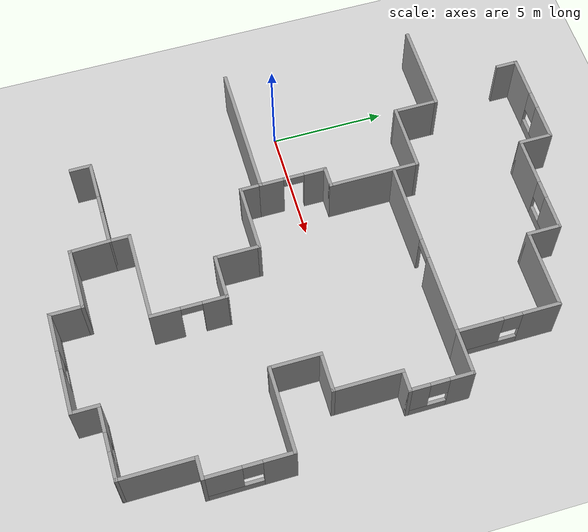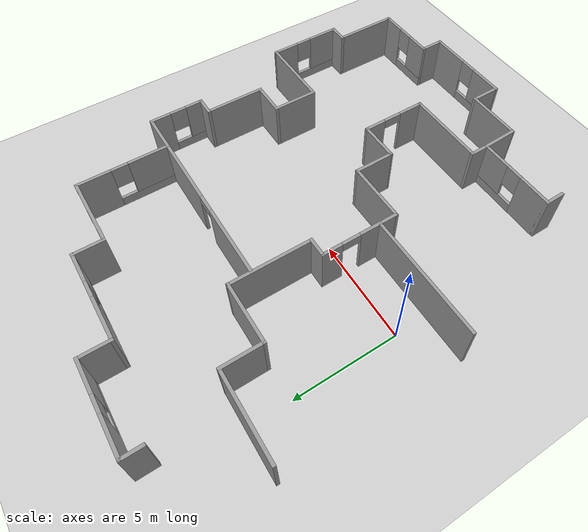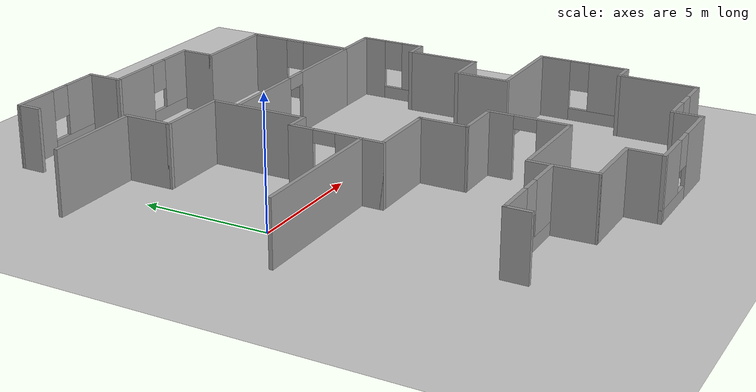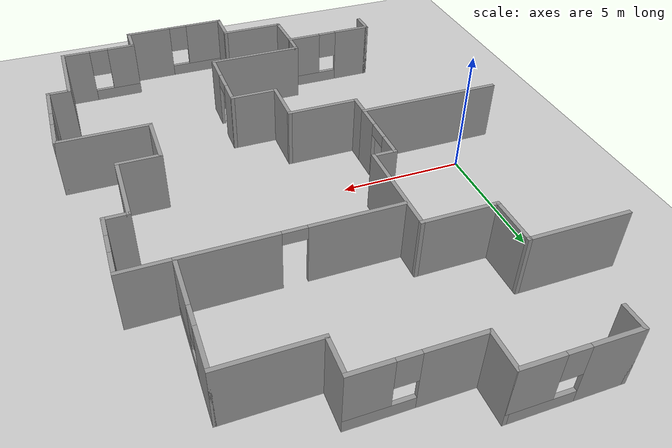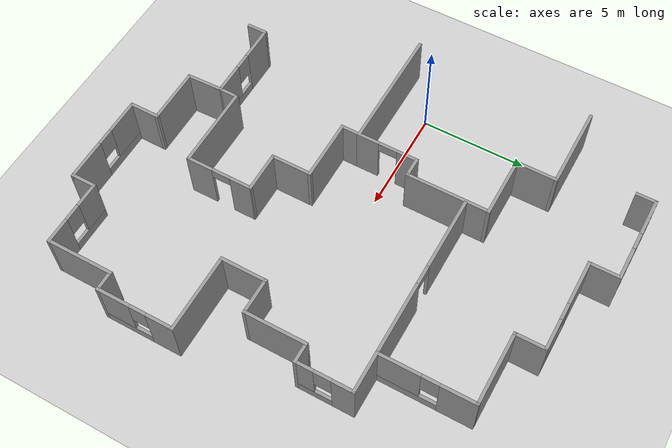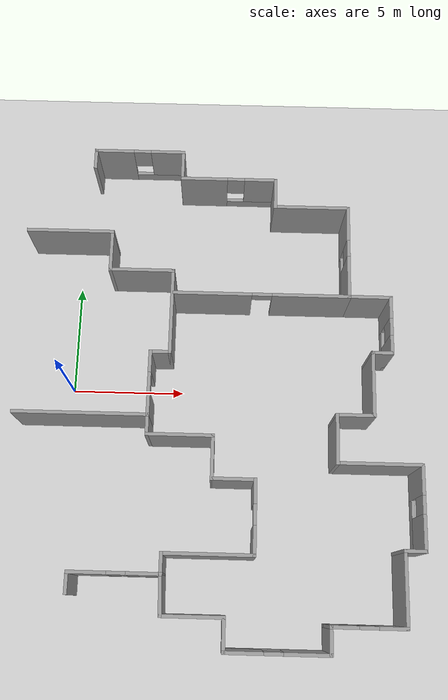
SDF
<sdf version="1.7">
 <world name="default">
  <model name="ground_plane">
   <static>1</static>
   <link name="link">
    <collision name="collision">
     <geometry><plane><normal>0 0 1</normal><size>100 100</size></plane></geometry>
     <surface><friction><ode><mu>100</mu><mu2>50</mu2></ode></friction></surface>
    </collision>
    <visual name="visual">
     <cast_shadows>0</cast_shadows>
     <geometry><plane><normal>0 0 1</normal><size>100 100</size></plane></geometry>
     <material>
      <script><uri>file://media/materials/scripts/gazebo.material</uri><name>Gazebo/Grey</name></script>
     </material>
    </visual>
   </link>
  </model>
  <model name="my_office">
   <pose>-0.02514 -0.08544 0 0 -0 0</pose>
   <link name="Wall_10">
    <collision name="Wall_10_Collision">
     <geometry><box><size>2 0.15 2.5</size></box></geometry>
     <pose>0 0 1.25 0 -0 0</pose>
    </collision>
    <visual name="Wall_10_Visual">
     <pose>0 0 1.25 0 -0 0</pose>
     <geometry><box><size>2 0.15 2.5</size></box></geometry>
     <material>
      <script><uri>file://media/materials/scripts/gazebo.material</uri><name>Gazebo/Grey</name></script>
      <ambient>1 1 1 1</ambient>
     </material>
     <meta><layer>0</layer></meta>
    </visual>
    <pose>6.5 -3.275 0 0 -0 1.5708</pose>
   </link>
   <link name="Wall_11">
    <collision name="Wall_11_Collision">
     <geometry><box><size>3 0.15 2.5</size></box></geometry>
     <pose>0 0 1.25 0 -0 0</pose>
    </collision>
    <visual name="Wall_11_Visual">
     <pose>0 0 1.25 0 -0 0</pose>
     <geometry><box><size>3 0.15 2.5</size></box></geometry>
     <material>
      <script><uri>file://media/materials/scripts/gazebo.material</uri><name>Gazebo/Grey</name></script>
      <ambient>1 1 1 1</ambient>
     </material>
     <meta><layer>0</layer></meta>
    </visual>
    <pose>5.075 -2.35 0 0 -0 3.14159</pose>
   </link>
   <link name="Wall_12">
    <collision name="Wall_12_Collision">
     <geometry><box><size>1 0.15 2.5</size></box></geometry>
     <pose>0 0 1.25 0 -0 0</pose>
    </collision>
    <visual name="Wall_12_Visual">
     <pose>0 0 1.25 0 -0 0</pose>
     <geometry><box><size>1 0.15 2.5</size></box></geometry>
     <material>
      <script><uri>file://media/materials/scripts/gazebo.material</uri><name>Gazebo/Grey</name></script>
      <ambient>1 1 1 1</ambient>
     </material>
     <meta><layer>0</layer></meta>
    </visual>
    <pose>3.65 -1.925 0 0 -0 1.5708</pose>
   </link>
   <link name="Wall_13">
    <collision name="Wall_13_Collision">
     <geometry><box><size>6 0.15 2.5</size></box></geometry>
     <pose>0 0 1.25 0 -0 0</pose>
    </collision>
    <visual name="Wall_13_Visual">
     <pose>0 0 1.25 0 -0 0</pose>
     <geometry><box><size>6 0.15 2.5</size></box></geometry>
     <material>
      <script><uri>file://media/materials/scripts/gazebo.material</uri><name>Gazebo/Grey</name></script>
      <ambient>1 1 1 1</ambient>
     </material>
     <meta><layer>0</layer></meta>
    </visual>
    <pose>0.725 -1.5 0 0 -0 3.14159</pose>
   </link>
   <link name="Wall_24">
    <collision name="Wall_24_Collision">
     <geometry><box><size>1 0.15 2.5</size></box></geometry>
     <pose>0 0 1.25 0 -0 0</pose>
    </collision>
    <visual name="Wall_24_Visual">
     <pose>0 0 1.25 0 -0 0</pose>
     <geometry><box><size>1 0.15 2.5</size></box></geometry>
     <material>
      <script><uri>file://media/materials/scripts/gazebo.material</uri><name>Gazebo/Grey</name></script>
      <ambient>1 1 1 1</ambient>
     </material>
     <meta><layer>0</layer></meta>
    </visual>
    <pose>0.65 -8.625 0 0 -0 1.5708</pose>
   </link>
   <link name="Wall_25">
    <pose>2.575 -8.2 0 0 -0 0</pose>
    <visual name="Wall_25_Visual_0">
     <pose>-1.15778 0 1.25 0 -0 0</pose>
     <geometry><box><size>1.68443 0.15 2.5</size></box></geometry>
     <material>
      <script><uri>file://media/materials/scripts/gazebo.material</uri><name>Gazebo/Grey</name></script>
      <ambient>1 1 1 1</ambient>
     </material>
     <meta><layer>0</layer></meta>
    </visual>
    <collision name="Wall_25_Collision_0">
     <geometry><box><size>1.68443 0.15 2.5</size></box></geometry>
     <pose>-1.15778 0 1.25 0 -0 0</pose>
    </collision>
    <visual name="Wall_25_Visual_1">
     <pose>0.842216 0 0.25 0 -0 0</pose>
     <geometry><box><size>2.31557 0.15 0.5</size></box></geometry>
     <material>
      <script><uri>file://media/materials/scripts/gazebo.material</uri><name>Gazebo/Grey</name></script>
      <ambient>1 1 1 1</ambient>
     </material>
     <meta><layer>0</layer></meta>
    </visual>
    <collision name="Wall_25_Collision_1">
     <geometry><box><size>2.31557 0.15 0.5</size></box></geometry>
     <pose>0.842216 0 0.25 0 -0 0</pose>
    </collision>
    <visual name="Wall_25_Visual_2">
     <pose>1.24222 0 1.5 0 -0 0</pose>
     <geometry><box><size>1.51557 0.15 2</size></box></geometry>
     <material>
      <script><uri>file://media/materials/scripts/gazebo.material</uri><name>Gazebo/Grey</name></script>
      <ambient>1 1 1 1</ambient>
     </material>
     <meta><layer>0</layer></meta>
    </visual>
    <collision name="Wall_25_Collision_2">
     <geometry><box><size>1.51557 0.15 2</size></box></geometry>
     <pose>1.24222 0 1.5 0 -0 0</pose>
    </collision>
    <visual name="Wall_25_Visual_3">
     <pose>0.084432 0 1.9 0 -0 0</pose>
     <geometry><box><size>0.8 0.15 1.2</size></box></geometry>
     <material>
      <script><uri>file://media/materials/scripts/gazebo.material</uri><name>Gazebo/Grey</name></script>
      <ambient>1 1 1 1</ambient>
     </material>
     <meta><layer>0</layer></meta>
    </visual>
    <collision name="Wall_25_Collision_3">
     <geometry><box><size>0.8 0.15 1.2</size></box></geometry>
     <pose>0.084432 0 1.9 0 -0 0</pose>
    </collision>
   </link>
   <link name="Wall_26">
    <collision name="Wall_26_Collision">
     <geometry><box><size>1 0.15 2.5</size></box></geometry>
     <pose>0 0 1.25 0 -0 0</pose>
    </collision>
    <visual name="Wall_26_Visual">
     <pose>0 0 1.25 0 -0 0</pose>
     <geometry><box><size>1 0.15 2.5</size></box></geometry>
     <material>
      <script><uri>file://media/materials/scripts/gazebo.material</uri><name>Gazebo/Grey</name></script>
      <ambient>1 1 1 1</ambient>
     </material>
     <meta><layer>0</layer></meta>
    </visual>
    <pose>4.5 -7.775 0 0 -0 1.5708</pose>
   </link>
   <link name="Wall_27">
    <collision name="Wall_27_Collision">
     <geometry><box><size>4 0.15 2.5</size></box></geometry>
     <pose>0 0 1.25 0 -0 0</pose>
    </collision>
    <visual name="Wall_27_Visual">
     <pose>0 0 1.25 0 -0 0</pose>
     <geometry><box><size>4 0.15 2.5</size></box></geometry>
     <material>
      <script><uri>file://media/materials/scripts/gazebo.material</uri><name>Gazebo/Grey</name></script>
      <ambient>1 1 1 1</ambient>
     </material>
     <meta><layer>0</layer></meta>
    </visual>
    <pose>6.425 -7.35 0 0 -0 0</pose>
   </link>
   <link name="Wall_38">
    <pose>3.65 -0.075 0 0 -0 1.5708</pose>
    <visual name="Wall_38_Visual_0">
     <pose>-0.960473 0 1.25 0 -0 0</pose>
     <geometry><box><size>1.07906 0.15 2.5</size></box></geometry>
     <material>
      <script><uri>file://media/materials/scripts/gazebo.material</uri><name>Gazebo/Grey</name></script>
      <ambient>1 1 1 1</ambient>
     </material>
     <meta><layer>0</layer></meta>
    </visual>
    <collision name="Wall_38_Collision_0">
     <geometry><box><size>1.07906 0.15 2.5</size></box></geometry>
     <pose>-0.960473 0 1.25 0 -0 0</pose>
    </collision>
    <visual name="Wall_38_Visual_1">
     <pose>0.989527 0 1.25 0 -0 0</pose>
     <geometry><box><size>1.02094 0.15 2.5</size></box></geometry>
     <material>
      <script><uri>file://media/materials/scripts/gazebo.material</uri><name>Gazebo/Grey</name></script>
      <ambient>1 1 1 1</ambient>
     </material>
     <meta><layer>0</layer></meta>
    </visual>
    <collision name="Wall_38_Collision_1">
     <geometry><box><size>1.02094 0.15 2.5</size></box></geometry>
     <pose>0.989527 0 1.25 0 -0 0</pose>
    </collision>
    <visual name="Wall_38_Visual_2">
     <pose>0.029055 0 2.25 0 -0 0</pose>
     <geometry><box><size>0.9 0.15 0.5</size></box></geometry>
     <material>
      <script><uri>file://media/materials/scripts/gazebo.material</uri><name>Gazebo/Grey</name></script>
      <ambient>1 1 1 1</ambient>
     </material>
     <meta><layer>0</layer></meta>
    </visual>
    <collision name="Wall_38_Collision_2">
     <geometry><box><size>0.9 0.15 0.5</size></box></geometry>
     <pose>0.029055 0 2.25 0 -0 0</pose>
    </collision>
   </link>
   <link name="Wall_39">
    <collision name="Wall_39_Collision">
     <geometry><box><size>1 0.15 2.5</size></box></geometry>
     <pose>0 0 1.25 0 -0 0</pose>
    </collision>
    <visual name="Wall_39_Visual">
     <pose>0 0 1.25 0 -0 0</pose>
     <geometry><box><size>1 0.15 2.5</size></box></geometry>
     <material>
      <script><uri>file://media/materials/scripts/gazebo.material</uri><name>Gazebo/Grey</name></script>
      <ambient>1 1 1 1</ambient>
     </material>
     <meta><layer>0</layer></meta>
    </visual>
    <pose>4.075 1.35 0 0 -0 0</pose>
   </link>
   <link name="Wall_40">
    <collision name="Wall_40_Collision">
     <geometry><box><size>4 0.15 2.5</size></box></geometry>
     <pose>0 0 1.25 0 -0 0</pose>
    </collision>
    <visual name="Wall_40_Visual">
     <pose>0 0 1.25 0 -0 0</pose>
     <geometry><box><size>4 0.15 2.5</size></box></geometry>
     <material>
      <script><uri>file://media/materials/scripts/gazebo.material</uri><name>Gazebo/Grey</name></script>
      <ambient>1 1 1 1</ambient>
     </material>
     <meta><layer>0</layer></meta>
    </visual>
    <pose>4.5 3.275 0 0 -0 1.5708</pose>
   </link>
   <link name="Wall_41">
    <collision name="Wall_41_Collision">
     <geometry><box><size>3 0.15 2.5</size></box></geometry>
     <pose>0 0 1.25 0 -0 0</pose>
    </collision>
    <visual name="Wall_41_Visual">
     <pose>0 0 1.25 0 -0 0</pose>
     <geometry><box><size>3 0.15 2.5</size></box></geometry>
     <material>
      <script><uri>file://media/materials/scripts/gazebo.material</uri><name>Gazebo/Grey</name></script>
      <ambient>1 1 1 1</ambient>
     </material>
     <meta><layer>0</layer></meta>
    </visual>
    <pose>3.075 5.2 0 0 -0 3.14159</pose>
   </link>
   <link name="Wall_42">
    <collision name="Wall_42_Collision">
     <geometry><box><size>2 0.15 2.5</size></box></geometry>
     <pose>0 0 1.25 0 -0 0</pose>
    </collision>
    <visual name="Wall_42_Visual">
     <pose>0 0 1.25 0 -0 0</pose>
     <geometry><box><size>2 0.15 2.5</size></box></geometry>
     <material>
      <script><uri>file://media/materials/scripts/gazebo.material</uri><name>Gazebo/Grey</name></script>
      <ambient>1 1 1 1</ambient>
     </material>
     <meta><layer>0</layer></meta>
    </visual>
    <pose>1.65 6.125 0 0 -0 1.5708</pose>
   </link>
   <link name="Wall_43">
    <collision name="Wall_43_Collision">
     <geometry><box><size>4 0.15 2.5</size></box></geometry>
     <pose>0 0 1.25 0 -0 0</pose>
    </collision>
    <visual name="Wall_43_Visual">
     <pose>0 0 1.25 0 -0 0</pose>
     <geometry><box><size>4 0.15 2.5</size></box></geometry>
     <material>
      <script><uri>file://media/materials/scripts/gazebo.material</uri><name>Gazebo/Grey</name></script>
      <ambient>1 1 1 1</ambient>
     </material>
     <meta><layer>0</layer></meta>
    </visual>
    <pose>-0.275 7.05 0 0 -0 3.14159</pose>
   </link>
   <link name="Wall_6">
    <pose>8.3556 -5.77445 0 0 -0 1.57088</pose>
    <visual name="Wall_6_Visual_0">
     <pose>-0.996151 0 1.25 0 -0 0</pose>
     <geometry><box><size>1.30543 0.15 2.5</size></box></geometry>
     <material>
      <script><uri>file://media/materials/scripts/gazebo.material</uri><name>Gazebo/Grey</name></script>
      <ambient>1 1 1 1</ambient>
     </material>
     <meta><layer>0</layer></meta>
    </visual>
    <collision name="Wall_6_Collision_0">
     <geometry><box><size>1.30543 0.15 2.5</size></box></geometry>
     <pose>-0.996151 0 1.25 0 -0 0</pose>
    </collision>
    <visual name="Wall_6_Visual_1">
     <pose>1.10271 0 1.25 0 -0 0</pose>
     <geometry><box><size>1.0923 0.15 2.5</size></box></geometry>
     <material>
      <script><uri>file://media/materials/scripts/gazebo.material</uri><name>Gazebo/Grey</name></script>
      <ambient>1 1 1 1</ambient>
     </material>
     <meta><layer>0</layer></meta>
    </visual>
    <collision name="Wall_6_Collision_1">
     <geometry><box><size>1.0923 0.15 2.5</size></box></geometry>
     <pose>1.10271 0 1.25 0 -0 0</pose>
    </collision>
    <visual name="Wall_6_Visual_2">
     <pose>0.106564 0 2.25 0 -0 0</pose>
     <geometry><box><size>0.9 0.15 0.5</size></box></geometry>
     <material>
      <script><uri>file://media/materials/scripts/gazebo.material</uri><name>Gazebo/Grey</name></script>
      <ambient>1 1 1 1</ambient>
     </material>
     <meta><layer>0</layer></meta>
    </visual>
    <collision name="Wall_6_Collision_2">
     <geometry><box><size>0.9 0.15 0.5</size></box></geometry>
     <pose>0.106564 0 2.25 0 -0 0</pose>
    </collision>
   </link>
   <link name="Wall_71">
    <collision name="Wall_71_Collision">
     <geometry><box><size>1 0.15 2.5</size></box></geometry>
     <pose>0 0 1.25 0 -0 0</pose>
    </collision>
    <visual name="Wall_71_Visual">
     <pose>0 0 1.25 0 -0 0</pose>
     <geometry><box><size>1 0.15 2.5</size></box></geometry>
     <material>
      <script><uri>file://media/materials/scripts/gazebo.material</uri><name>Gazebo/Grey</name></script>
      <ambient>1 1 1 1</ambient>
     </material>
     <meta><layer>0</layer></meta>
    </visual>
    <pose>0.65 10.775 0 0 -0 1.5708</pose>
   </link>
   <link name="Wall_72">
    <pose>2.7 11.2 0 0 -0 0</pose>
    <visual name="Wall_72_Visual_0">
     <pose>-1.20157 0 1.25 0 -0 0</pose>
     <geometry><box><size>1.84686 0.15 2.5</size></box></geometry>
     <material>
      <script><uri>file://media/materials/scripts/gazebo.material</uri><name>Gazebo/Grey</name></script>
      <ambient>1 1 1 1</ambient>
     </material>
     <meta><layer>0</layer></meta>
    </visual>
    <collision name="Wall_72_Collision_0">
     <geometry><box><size>1.84686 0.15 2.5</size></box></geometry>
     <pose>-1.20157 0 1.25 0 -0 0</pose>
    </collision>
    <visual name="Wall_72_Visual_1">
     <pose>0.923431 0 0.25 0 -0 0</pose>
     <geometry><box><size>2.40314 0.15 0.5</size></box></geometry>
     <material>
      <script><uri>file://media/materials/scripts/gazebo.material</uri><name>Gazebo/Grey</name></script>
      <ambient>1 1 1 1</ambient>
     </material>
     <meta><layer>0</layer></meta>
    </visual>
    <collision name="Wall_72_Collision_1">
     <geometry><box><size>2.40314 0.15 0.5</size></box></geometry>
     <pose>0.923431 0 0.25 0 -0 0</pose>
    </collision>
    <visual name="Wall_72_Visual_2">
     <pose>1.32343 0 1.5 0 -0 0</pose>
     <geometry><box><size>1.60314 0.15 2</size></box></geometry>
     <material>
      <script><uri>file://media/materials/scripts/gazebo.material</uri><name>Gazebo/Grey</name></script>
      <ambient>1 1 1 1</ambient>
     </material>
     <meta><layer>0</layer></meta>
    </visual>
    <collision name="Wall_72_Collision_2">
     <geometry><box><size>1.60314 0.15 2</size></box></geometry>
     <pose>1.32343 0 1.5 0 -0 0</pose>
    </collision>
    <visual name="Wall_72_Visual_3">
     <pose>0.121861 0 1.9 0 -0 0</pose>
     <geometry><box><size>0.8 0.15 1.2</size></box></geometry>
     <material>
      <script><uri>file://media/materials/scripts/gazebo.material</uri><name>Gazebo/Grey</name></script>
      <ambient>1 1 1 1</ambient>
     </material>
     <meta><layer>0</layer></meta>
    </visual>
    <collision name="Wall_72_Collision_3">
     <geometry><box><size>0.8 0.15 1.2</size></box></geometry>
     <pose>0.121861 0 1.9 0 -0 0</pose>
    </collision>
   </link>
   <link name="Wall_73">
    <collision name="Wall_73_Collision">
     <geometry><box><size>1.5 0.15 2.5</size></box></geometry>
     <pose>0 0 1.25 0 -0 0</pose>
    </collision>
    <visual name="Wall_73_Visual">
     <pose>0 0 1.25 0 -0 0</pose>
     <geometry><box><size>1.5 0.15 2.5</size></box></geometry>
     <material>
      <script><uri>file://media/materials/scripts/gazebo.material</uri><name>Gazebo/Grey</name></script>
      <ambient>1 1 1 1</ambient>
     </material>
     <meta><layer>0</layer></meta>
    </visual>
    <pose>4.75 10.525 0 0 -0 -1.5708</pose>
   </link>
   <link name="Wall_74">
    <pose>6.925 9.85 0 0 -0 0</pose>
    <visual name="Wall_74_Visual_0">
     <pose>-1.16067 0 1.25 0 -0 0</pose>
     <geometry><box><size>2.17867 0.15 2.5</size></box></geometry>
     <material>
      <script><uri>file://media/materials/scripts/gazebo.material</uri><name>Gazebo/Grey</name></script>
      <ambient>1 1 1 1</ambient>
     </material>
     <meta><layer>0</layer></meta>
    </visual>
    <collision name="Wall_74_Collision_0">
     <geometry><box><size>2.17867 0.15 2.5</size></box></geometry>
     <pose>-1.16067 0 1.25 0 -0 0</pose>
    </collision>
    <visual name="Wall_74_Visual_1">
     <pose>1.08933 0 0.25 0 -0 0</pose>
     <geometry><box><size>2.32133 0.15 0.5</size></box></geometry>
     <material>
      <script><uri>file://media/materials/scripts/gazebo.material</uri><name>Gazebo/Grey</name></script>
      <ambient>1 1 1 1</ambient>
     </material>
     <meta><layer>0</layer></meta>
    </visual>
    <collision name="Wall_74_Collision_1">
     <geometry><box><size>2.32133 0.15 0.5</size></box></geometry>
     <pose>1.08933 0 0.25 0 -0 0</pose>
    </collision>
    <visual name="Wall_74_Visual_2">
     <pose>1.48933 0 1.5 0 -0 0</pose>
     <geometry><box><size>1.52133 0.15 2</size></box></geometry>
     <material>
      <script><uri>file://media/materials/scripts/gazebo.material</uri><name>Gazebo/Grey</name></script>
      <ambient>1 1 1 1</ambient>
     </material>
     <meta><layer>0</layer></meta>
    </visual>
    <collision name="Wall_74_Collision_2">
     <geometry><box><size>1.52133 0.15 2</size></box></geometry>
     <pose>1.48933 0 1.5 0 -0 0</pose>
    </collision>
    <visual name="Wall_74_Visual_3">
     <pose>0.328669 0 1.9 0 -0 0</pose>
     <geometry><box><size>0.8 0.15 1.2</size></box></geometry>
     <material>
      <script><uri>file://media/materials/scripts/gazebo.material</uri><name>Gazebo/Grey</name></script>
      <ambient>1 1 1 1</ambient>
     </material>
     <meta><layer>0</layer></meta>
    </visual>
    <collision name="Wall_74_Collision_3">
     <geometry><box><size>0.8 0.15 1.2</size></box></geometry>
     <pose>0.328669 0 1.9 0 -0 0</pose>
    </collision>
   </link>
   <link name="Wall_75">
    <collision name="Wall_75_Collision">
     <geometry><box><size>1.5 0.15 2.5</size></box></geometry>
     <pose>0 0 1.25 0 -0 0</pose>
    </collision>
    <visual name="Wall_75_Visual">
     <pose>0 0 1.25 0 -0 0</pose>
     <geometry><box><size>1.5 0.15 2.5</size></box></geometry>
     <material>
      <script><uri>file://media/materials/scripts/gazebo.material</uri><name>Gazebo/Grey</name></script>
      <ambient>1 1 1 1</ambient>
     </material>
     <meta><layer>0</layer></meta>
    </visual>
    <pose>9.1 9.175 0 0 -0 -1.5708</pose>
   </link>
   <link name="Wall_76">
    <collision name="Wall_76_Collision">
     <geometry><box><size>3.5 0.15 2.5</size></box></geometry>
     <pose>0 0 1.25 0 -0 0</pose>
    </collision>
    <visual name="Wall_76_Visual">
     <pose>0 0 1.25 0 -0 0</pose>
     <geometry><box><size>3.5 0.15 2.5</size></box></geometry>
     <material>
      <script><uri>file://media/materials/scripts/gazebo.material</uri><name>Gazebo/Grey</name></script>
      <ambient>1 1 1 1</ambient>
     </material>
     <meta><layer>0</layer></meta>
    </visual>
    <pose>10.775 8.5 0 0 -0 0</pose>
   </link>
   <link name="Wall_77">
    <pose>12.45 6.325 0 0 -0 -1.5708</pose>
    <visual name="Wall_77_Visual_0">
     <pose>-1.4172 0 1.25 0 -0 0</pose>
     <geometry><box><size>1.6656 0.15 2.5</size></box></geometry>
     <material>
      <script><uri>file://media/materials/scripts/gazebo.material</uri><name>Gazebo/Grey</name></script>
      <ambient>1 1 1 1</ambient>
     </material>
     <meta><layer>0</layer></meta>
    </visual>
    <collision name="Wall_77_Collision_0">
     <geometry><box><size>1.6656 0.15 2.5</size></box></geometry>
     <pose>-1.4172 0 1.25 0 -0 0</pose>
    </collision>
    <visual name="Wall_77_Visual_1">
     <pose>0.8328 0 0.25 0 -0 0</pose>
     <geometry><box><size>2.8344 0.15 0.5</size></box></geometry>
     <material>
      <script><uri>file://media/materials/scripts/gazebo.material</uri><name>Gazebo/Grey</name></script>
      <ambient>1 1 1 1</ambient>
     </material>
     <meta><layer>0</layer></meta>
    </visual>
    <collision name="Wall_77_Collision_1">
     <geometry><box><size>2.8344 0.15 0.5</size></box></geometry>
     <pose>0.8328 0 0.25 0 -0 0</pose>
    </collision>
    <visual name="Wall_77_Visual_2">
     <pose>1.2328 0 1.5 0 -0 0</pose>
     <geometry><box><size>2.0344 0.15 2</size></box></geometry>
     <material>
      <script><uri>file://media/materials/scripts/gazebo.material</uri><name>Gazebo/Grey</name></script>
      <ambient>1 1 1 1</ambient>
     </material>
     <meta><layer>0</layer></meta>
    </visual>
    <collision name="Wall_77_Collision_2">
     <geometry><box><size>2.0344 0.15 2</size></box></geometry>
     <pose>1.2328 0 1.5 0 -0 0</pose>
    </collision>
    <visual name="Wall_77_Visual_3">
     <pose>-0.1844 0 1.9 0 -0 0</pose>
     <geometry><box><size>0.8 0.15 1.2</size></box></geometry>
     <material>
      <script><uri>file://media/materials/scripts/gazebo.material</uri><name>Gazebo/Grey</name></script>
      <ambient>1 1 1 1</ambient>
     </material>
     <meta><layer>0</layer></meta>
    </visual>
    <collision name="Wall_77_Collision_3">
     <geometry><box><size>0.8 0.15 1.2</size></box></geometry>
     <pose>-0.1844 0 1.9 0 -0 0</pose>
    </collision>
   </link>
   <link name="Wall_78">
    <pose>8.525 4.15 0 0 -0 3.14159</pose>
    <visual name="Wall_78_Visual_0">
     <pose>-2.22862 0 1.25 0 -0 0</pose>
     <geometry><box><size>3.54276 0.15 2.5</size></box></geometry>
     <material>
      <script><uri>file://media/materials/scripts/gazebo.material</uri><name>Gazebo/Grey</name></script>
      <ambient>1 1 1 1</ambient>
     </material>
     <meta><layer>0</layer></meta>
    </visual>
    <collision name="Wall_78_Collision_0">
     <geometry><box><size>3.54276 0.15 2.5</size></box></geometry>
     <pose>-2.22862 0 1.25 0 -0 0</pose>
    </collision>
    <visual name="Wall_78_Visual_1">
     <pose>2.22138 0 1.25 0 -0 0</pose>
     <geometry><box><size>3.55724 0.15 2.5</size></box></geometry>
     <material>
      <script><uri>file://media/materials/scripts/gazebo.material</uri><name>Gazebo/Grey</name></script>
      <ambient>1 1 1 1</ambient>
     </material>
     <meta><layer>0</layer></meta>
    </visual>
    <collision name="Wall_78_Collision_1">
     <geometry><box><size>3.55724 0.15 2.5</size></box></geometry>
     <pose>2.22138 0 1.25 0 -0 0</pose>
    </collision>
    <visual name="Wall_78_Visual_2">
     <pose>-0.007238 0 2.25 0 -0 0</pose>
     <geometry><box><size>0.9 0.15 0.5</size></box></geometry>
     <material>
      <script><uri>file://media/materials/scripts/gazebo.material</uri><name>Gazebo/Grey</name></script>
      <ambient>1 1 1 1</ambient>
     </material>
     <meta><layer>0</layer></meta>
    </visual>
    <collision name="Wall_78_Collision_2">
     <geometry><box><size>0.9 0.15 0.5</size></box></geometry>
     <pose>-0.007238 0 2.25 0 -0 0</pose>
    </collision>
   </link>
   <link name="Wall_80">
    <collision name="Wall_80_Collision">
     <geometry><box><size>2 0.15 2.5</size></box></geometry>
     <pose>0 0 1.25 0 -0 0</pose>
    </collision>
    <visual name="Wall_80_Visual">
     <pose>0 0 1.25 0 -0 0</pose>
     <geometry><box><size>2 0.15 2.5</size></box></geometry>
     <material>
      <script><uri>file://media/materials/scripts/gazebo.material</uri><name>Gazebo/Grey</name></script>
      <ambient>1 1 1 1</ambient>
     </material>
     <meta><layer>0</layer></meta>
    </visual>
    <pose>13.375 4.15 0 0 -0 0</pose>
   </link>
   <link name="Wall_81">
    <pose>14.3 2.85 0 0 -0 -1.5708</pose>
    <visual name="Wall_81_Visual_0">
     <pose>-0.854903 0 1.25 0 -0 0</pose>
     <geometry><box><size>1.04019 0.15 2.5</size></box></geometry>
     <material>
      <script><uri>file://media/materials/scripts/gazebo.material</uri><name>Gazebo/Grey</name></script>
      <ambient>1 1 1 1</ambient>
     </material>
     <meta><layer>0</layer></meta>
    </visual>
    <collision name="Wall_81_Collision_0">
     <geometry><box><size>1.04019 0.15 2.5</size></box></geometry>
     <pose>-0.854903 0 1.25 0 -0 0</pose>
    </collision>
    <visual name="Wall_81_Visual_1">
     <pose>0.520097 0 0.25 0 -0 0</pose>
     <geometry><box><size>1.70981 0.15 0.5</size></box></geometry>
     <material>
      <script><uri>file://media/materials/scripts/gazebo.material</uri><name>Gazebo/Grey</name></script>
      <ambient>1 1 1 1</ambient>
     </material>
     <meta><layer>0</layer></meta>
    </visual>
    <collision name="Wall_81_Collision_1">
     <geometry><box><size>1.70981 0.15 0.5</size></box></geometry>
     <pose>0.520097 0 0.25 0 -0 0</pose>
    </collision>
    <visual name="Wall_81_Visual_2">
     <pose>0.920097 0 1.5 0 -0 0</pose>
     <geometry><box><size>0.909806 0.15 2</size></box></geometry>
     <material>
      <script><uri>file://media/materials/scripts/gazebo.material</uri><name>Gazebo/Grey</name></script>
      <ambient>1 1 1 1</ambient>
     </material>
     <meta><layer>0</layer></meta>
    </visual>
    <collision name="Wall_81_Collision_2">
     <geometry><box><size>0.909806 0.15 2</size></box></geometry>
     <pose>0.920097 0 1.5 0 -0 0</pose>
    </collision>
    <visual name="Wall_81_Visual_3">
     <pose>0.065194 0 1.9 0 -0 0</pose>
     <geometry><box><size>0.8 0.15 1.2</size></box></geometry>
     <material>
      <script><uri>file://media/materials/scripts/gazebo.material</uri><name>Gazebo/Grey</name></script>
      <ambient>1 1 1 1</ambient>
     </material>
     <meta><layer>0</layer></meta>
    </visual>
    <collision name="Wall_81_Collision_3">
     <geometry><box><size>0.8 0.15 1.2</size></box></geometry>
     <pose>0.065194 0 1.9 0 -0 0</pose>
    </collision>
   </link>
   <link name="Wall_82">
    <collision name="Wall_82_Collision">
     <geometry><box><size>1 0.15 2.5</size></box></geometry>
     <pose>0 0 1.25 0 -0 0</pose>
    </collision>
    <visual name="Wall_82_Visual">
     <pose>0 0 1.25 0 -0 0</pose>
     <geometry><box><size>1 0.15 2.5</size></box></geometry>
     <material>
      <script><uri>file://media/materials/scripts/gazebo.material</uri><name>Gazebo/Grey</name></script>
      <ambient>1 1 1 1</ambient>
     </material>
     <meta><layer>0</layer></meta>
    </visual>
    <pose>13.875 1.55 0 0 -0 3.14159</pose>
   </link>
   <link name="Wall_83">
    <collision name="Wall_83_Collision">
     <geometry><box><size>3 0.15 2.5</size></box></geometry>
     <pose>0 0 1.25 0 -0 0</pose>
    </collision>
    <visual name="Wall_83_Visual">
     <pose>0 0 1.25 0 -0 0</pose>
     <geometry><box><size>3 0.15 2.5</size></box></geometry>
     <material>
      <script><uri>file://media/materials/scripts/gazebo.material</uri><name>Gazebo/Grey</name></script>
      <ambient>1 1 1 1</ambient>
     </material>
     <meta><layer>0</layer></meta>
    </visual>
    <pose>13.45 0.125 0 0 -0 -1.5708</pose>
   </link>
   <link name="Wall_84">
    <collision name="Wall_84_Collision">
     <geometry><box><size>1.75 0.15 2.5</size></box></geometry>
     <pose>0 0 1.25 0 -0 0</pose>
    </collision>
    <visual name="Wall_84_Visual">
     <pose>0 0 1.25 0 -0 0</pose>
     <geometry><box><size>1.75 0.15 2.5</size></box></geometry>
     <material>
      <script><uri>file://media/materials/scripts/gazebo.material</uri><name>Gazebo/Grey</name></script>
      <ambient>1 1 1 1</ambient>
     </material>
     <meta><layer>0</layer></meta>
    </visual>
    <pose>12.65 -1.3 0 0 -0 3.14159</pose>
   </link>
   <link name="Wall_85">
    <collision name="Wall_85_Collision">
     <geometry><box><size>2.25 0.15 2.5</size></box></geometry>
     <pose>0 0 1.25 0 -0 0</pose>
    </collision>
    <visual name="Wall_85_Visual">
     <pose>0 0 1.25 0 -0 0</pose>
     <geometry><box><size>2.25 0.15 2.5</size></box></geometry>
     <material>
      <script><uri>file://media/materials/scripts/gazebo.material</uri><name>Gazebo/Grey</name></script>
      <ambient>1 1 1 1</ambient>
     </material>
     <meta><layer>0</layer></meta>
    </visual>
    <pose>11.85 -2.35 0 0 -0 -1.5708</pose>
   </link>
   <link name="Wall_86">
    <collision name="Wall_86_Collision">
     <geometry><box><size>3.75 0.15 2.5</size></box></geometry>
     <pose>0 0 1.25 0 -0 0</pose>
    </collision>
    <visual name="Wall_86_Visual">
     <pose>0 0 1.25 0 -0 0</pose>
     <geometry><box><size>3.75 0.15 2.5</size></box></geometry>
     <material>
      <script><uri>file://media/materials/scripts/gazebo.material</uri><name>Gazebo/Grey</name></script>
      <ambient>1 1 1 1</ambient>
     </material>
     <meta><layer>0</layer></meta>
    </visual>
    <pose>13.65 -3.4 0 0 -0 0</pose>
   </link>
   <link name="Wall_87">
    <pose>15.45 -5.2 0 0 -0 -1.5708</pose>
    <visual name="Wall_87_Visual_0">
     <pose>-1.20478 0 1.25 0 -0 0</pose>
     <geometry><box><size>1.34044 0.15 2.5</size></box></geometry>
     <material>
      <script><uri>file://media/materials/scripts/gazebo.material</uri><name>Gazebo/Grey</name></script>
      <ambient>1 1 1 1</ambient>
     </material>
     <meta><layer>0</layer></meta>
    </visual>
    <collision name="Wall_87_Collision_0">
     <geometry><box><size>1.34044 0.15 2.5</size></box></geometry>
     <pose>-1.20478 0 1.25 0 -0 0</pose>
    </collision>
    <visual name="Wall_87_Visual_1">
     <pose>0.670219 0 0.25 0 -0 0</pose>
     <geometry><box><size>2.40956 0.15 0.5</size></box></geometry>
     <material>
      <script><uri>file://media/materials/scripts/gazebo.material</uri><name>Gazebo/Grey</name></script>
      <ambient>1 1 1 1</ambient>
     </material>
     <meta><layer>0</layer></meta>
    </visual>
    <collision name="Wall_87_Collision_1">
     <geometry><box><size>2.40956 0.15 0.5</size></box></geometry>
     <pose>0.670219 0 0.25 0 -0 0</pose>
    </collision>
    <visual name="Wall_87_Visual_2">
     <pose>1.07022 0 1.5 0 -0 0</pose>
     <geometry><box><size>1.60956 0.15 2</size></box></geometry>
     <material>
      <script><uri>file://media/materials/scripts/gazebo.material</uri><name>Gazebo/Grey</name></script>
      <ambient>1 1 1 1</ambient>
     </material>
     <meta><layer>0</layer></meta>
    </visual>
    <collision name="Wall_87_Collision_2">
     <geometry><box><size>1.60956 0.15 2</size></box></geometry>
     <pose>1.07022 0 1.5 0 -0 0</pose>
    </collision>
    <visual name="Wall_87_Visual_3">
     <pose>-0.134563 0 1.9 0 -0 0</pose>
     <geometry><box><size>0.8 0.15 1.2</size></box></geometry>
     <material>
      <script><uri>file://media/materials/scripts/gazebo.material</uri><name>Gazebo/Grey</name></script>
      <ambient>1 1 1 1</ambient>
     </material>
     <meta><layer>0</layer></meta>
    </visual>
    <collision name="Wall_87_Collision_3">
     <geometry><box><size>0.8 0.15 1.2</size></box></geometry>
     <pose>-0.134563 0 1.9 0 -0 0</pose>
    </collision>
   </link>
   <link name="Wall_88">
    <collision name="Wall_88_Collision">
     <geometry><box><size>1 0.15 2.5</size></box></geometry>
     <pose>0 0 1.25 0 -0 0</pose>
    </collision>
    <visual name="Wall_88_Visual">
     <pose>0 0 1.25 0 -0 0</pose>
     <geometry><box><size>1 0.15 2.5</size></box></geometry>
     <material>
      <script><uri>file://media/materials/scripts/gazebo.material</uri><name>Gazebo/Grey</name></script>
      <ambient>1 1 1 1</ambient>
     </material>
     <meta><layer>0</layer></meta>
    </visual>
    <pose>15.025 -7 0 0 -0 3.14159</pose>
   </link>
   <link name="Wall_89">
    <collision name="Wall_89_Collision">
     <geometry><box><size>3.25 0.15 2.5</size></box></geometry>
     <pose>0 0 1.25 0 -0 0</pose>
    </collision>
    <visual name="Wall_89_Visual">
     <pose>0 0 1.25 0 -0 0</pose>
     <geometry><box><size>3.25 0.15 2.5</size></box></geometry>
     <material>
      <script><uri>file://media/materials/scripts/gazebo.material</uri><name>Gazebo/Grey</name></script>
      <ambient>1 1 1 1</ambient>
     </material>
     <meta><layer>0</layer></meta>
    </visual>
    <pose>14.6 -8.55 0 0 -0 -1.5708</pose>
   </link>
   <link name="Wall_9">
    <collision name="Wall_9_Collision">
     <geometry><box><size>2.00546 0.15 2.5</size></box></geometry>
     <pose>0 0 1.25 0 -0 0</pose>
    </collision>
    <visual name="Wall_9_Visual">
     <pose>0 0 1.25 0 -0 0</pose>
     <geometry><box><size>2.00546 0.15 2.5</size></box></geometry>
     <material>
      <script><uri>file://media/materials/scripts/gazebo.material</uri><name>Gazebo/Grey</name></script>
      <ambient>1 1 1 1</ambient>
     </material>
     <meta><layer>0</layer></meta>
    </visual>
    <pose>7.42773 -4.20042 0 0 -0 3.14114</pose>
   </link>
   <link name="Wall_90">
    <pose>13.05 -10.1 0 0 -0 3.14159</pose>
    <visual name="Wall_90_Visual_0">
     <pose>-1.00804 0 1.25 0 -0 0</pose>
     <geometry><box><size>1.23391 0.15 2.5</size></box></geometry>
     <material>
      <script><uri>file://media/materials/scripts/gazebo.material</uri><name>Gazebo/Grey</name></script>
      <ambient>1 1 1 1</ambient>
     </material>
     <meta><layer>0</layer></meta>
    </visual>
    <collision name="Wall_90_Collision_0">
     <geometry><box><size>1.23391 0.15 2.5</size></box></geometry>
     <pose>-1.00804 0 1.25 0 -0 0</pose>
    </collision>
    <visual name="Wall_90_Visual_1">
     <pose>0.616957 0 0.25 0 -0 0</pose>
     <geometry><box><size>2.01609 0.15 0.5</size></box></geometry>
     <material>
      <script><uri>file://media/materials/scripts/gazebo.material</uri><name>Gazebo/Grey</name></script>
      <ambient>1 1 1 1</ambient>
     </material>
     <meta><layer>0</layer></meta>
    </visual>
    <collision name="Wall_90_Collision_1">
     <geometry><box><size>2.01609 0.15 0.5</size></box></geometry>
     <pose>0.616957 0 0.25 0 -0 0</pose>
    </collision>
    <visual name="Wall_90_Visual_2">
     <pose>1.01696 0 1.5 0 -0 0</pose>
     <geometry><box><size>1.21609 0.15 2</size></box></geometry>
     <material>
      <script><uri>file://media/materials/scripts/gazebo.material</uri><name>Gazebo/Grey</name></script>
      <ambient>1 1 1 1</ambient>
     </material>
     <meta><layer>0</layer></meta>
    </visual>
    <collision name="Wall_90_Collision_2">
     <geometry><box><size>1.21609 0.15 2</size></box></geometry>
     <pose>1.01696 0 1.5 0 -0 0</pose>
    </collision>
    <visual name="Wall_90_Visual_3">
     <pose>0.008914 0 1.9 0 -0 0</pose>
     <geometry><box><size>0.8 0.15 1.2</size></box></geometry>
     <material>
      <script><uri>file://media/materials/scripts/gazebo.material</uri><name>Gazebo/Grey</name></script>
      <ambient>1 1 1 1</ambient>
     </material>
     <meta><layer>0</layer></meta>
    </visual>
    <collision name="Wall_90_Collision_3">
     <geometry><box><size>0.8 0.15 1.2</size></box></geometry>
     <pose>0.008914 0 1.9 0 -0 0</pose>
    </collision>
   </link>
   <link name="Wall_91">
    <collision name="Wall_91_Collision">
     <geometry><box><size>1.25 0.15 2.5</size></box></geometry>
     <pose>0 0 1.25 0 -0 0</pose>
    </collision>
    <visual name="Wall_91_Visual">
     <pose>0 0 1.25 0 -0 0</pose>
     <geometry><box><size>1.25 0.15 2.5</size></box></geometry>
     <material>
      <script><uri>file://media/materials/scripts/gazebo.material</uri><name>Gazebo/Grey</name></script>
      <ambient>1 1 1 1</ambient>
     </material>
     <meta><layer>0</layer></meta>
    </visual>
    <pose>11.5 -10.65 0 0 -0 -1.5708</pose>
   </link>
   <link name="Wall_92">
    <pose>9.325 -11.2 0 0 -0 3.14159</pose>
    <visual name="Wall_92_Visual_0">
     <pose>-1.2539 0 1.25 0 -0 0</pose>
     <geometry><box><size>1.99219 0.15 2.5</size></box></geometry>
     <material>
      <script><uri>file://media/materials/scripts/gazebo.material</uri><name>Gazebo/Grey</name></script>
      <ambient>1 1 1 1</ambient>
     </material>
     <meta><layer>0</layer></meta>
    </visual>
    <collision name="Wall_92_Collision_0">
     <geometry><box><size>1.99219 0.15 2.5</size></box></geometry>
     <pose>-1.2539 0 1.25 0 -0 0</pose>
    </collision>
    <visual name="Wall_92_Visual_1">
     <pose>0.996096 0 0.25 0 -0 0</pose>
     <geometry><box><size>2.50781 0.15 0.5</size></box></geometry>
     <material>
      <script><uri>file://media/materials/scripts/gazebo.material</uri><name>Gazebo/Grey</name></script>
      <ambient>1 1 1 1</ambient>
     </material>
     <meta><layer>0</layer></meta>
    </visual>
    <collision name="Wall_92_Collision_1">
     <geometry><box><size>2.50781 0.15 0.5</size></box></geometry>
     <pose>0.996096 0 0.25 0 -0 0</pose>
    </collision>
    <visual name="Wall_92_Visual_2">
     <pose>1.3961 0 1.5 0 -0 0</pose>
     <geometry><box><size>1.70781 0.15 2</size></box></geometry>
     <material>
      <script><uri>file://media/materials/scripts/gazebo.material</uri><name>Gazebo/Grey</name></script>
      <ambient>1 1 1 1</ambient>
     </material>
     <meta><layer>0</layer></meta>
    </visual>
    <collision name="Wall_92_Collision_2">
     <geometry><box><size>1.70781 0.15 2</size></box></geometry>
     <pose>1.3961 0 1.5 0 -0 0</pose>
    </collision>
    <visual name="Wall_92_Visual_3">
     <pose>0.142192 0 1.9 0 -0 0</pose>
     <geometry><box><size>0.8 0.15 1.2</size></box></geometry>
     <material>
      <script><uri>file://media/materials/scripts/gazebo.material</uri><name>Gazebo/Grey</name></script>
      <ambient>1 1 1 1</ambient>
     </material>
     <meta><layer>0</layer></meta>
    </visual>
    <collision name="Wall_92_Collision_3">
     <geometry><box><size>0.8 0.15 1.2</size></box></geometry>
     <pose>0.142192 0 1.9 0 -0 0</pose>
    </collision>
   </link>
   <link name="Wall_93">
    <collision name="Wall_93_Collision">
     <geometry><box><size>1.5 0.15 2.5</size></box></geometry>
     <pose>0 0 1.25 0 -0 0</pose>
    </collision>
    <visual name="Wall_93_Visual">
     <pose>0 0 1.25 0 -0 0</pose>
     <geometry><box><size>1.5 0.15 2.5</size></box></geometry>
     <material>
      <script><uri>file://media/materials/scripts/gazebo.material</uri><name>Gazebo/Grey</name></script>
      <ambient>1 1 1 1</ambient>
     </material>
     <meta><layer>0</layer></meta>
    </visual>
    <pose>7.15 -10.525 0 0 -0 1.5708</pose>
   </link>
   <link name="Wall_94">
    <collision name="Wall_94_Collision">
     <geometry><box><size>2.75 0.15 2.5</size></box></geometry>
     <pose>0 0 1.25 0 -0 0</pose>
    </collision>
    <visual name="Wall_94_Visual">
     <pose>0 0 1.25 0 -0 0</pose>
     <geometry><box><size>2.75 0.15 2.5</size></box></geometry>
     <material>
      <script><uri>file://media/materials/scripts/gazebo.material</uri><name>Gazebo/Grey</name></script>
      <ambient>1 1 1 1</ambient>
     </material>
     <meta><layer>0</layer></meta>
    </visual>
    <pose>5.85 -9.85 0 0 -0 3.14159</pose>
   </link>
   <link name="Wall_95">
    <collision name="Wall_95_Collision">
     <geometry><box><size>1.80076 0.15 2.5</size></box></geometry>
     <pose>0 0 1.25 0 -0 0</pose>
    </collision>
    <visual name="Wall_95_Visual">
     <pose>0 0 1.25 0 -0 0</pose>
     <geometry><box><size>1.80076 0.15 2.5</size></box></geometry>
     <material>
      <script><uri>file://media/materials/scripts/gazebo.material</uri><name>Gazebo/Grey</name></script>
      <ambient>1 1 1 1</ambient>
     </material>
     <meta><layer>0</layer></meta>
    </visual>
    <pose>4.525 -9.025 0 0 -0 1.60109</pose>
   </link>
   <static>1</static>
  </model>
 </world>
</sdf>
